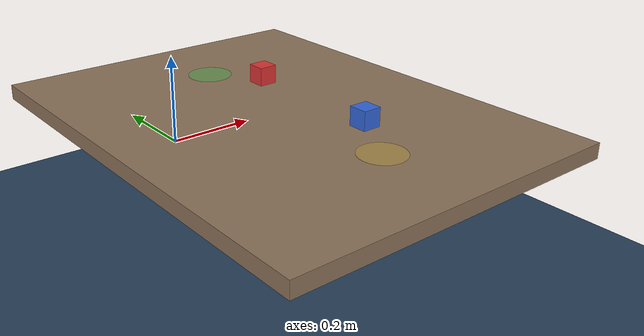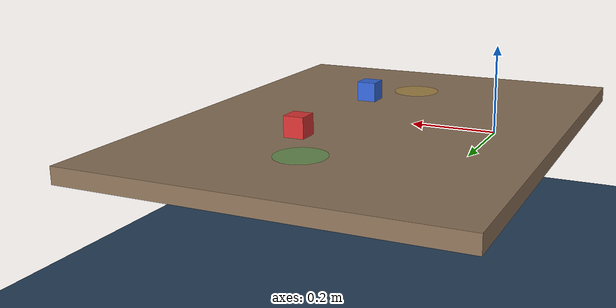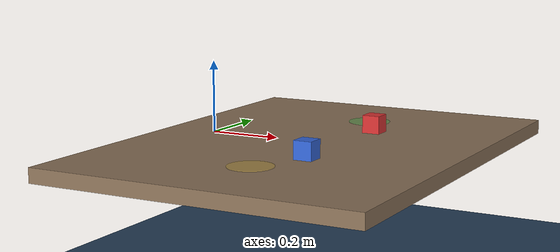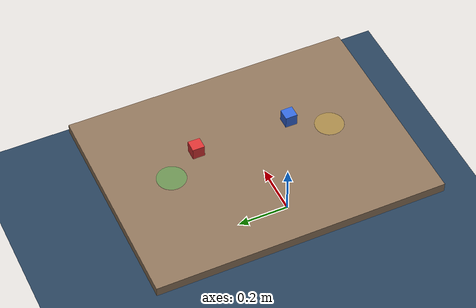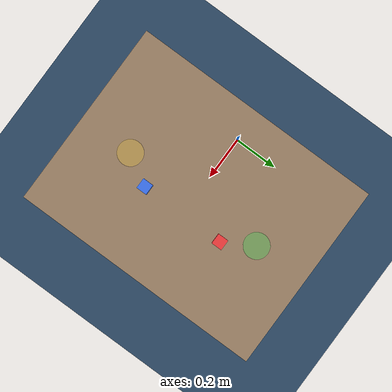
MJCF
<mujoco model="yam_bimanual_scene">
  <compiler angle="radian" meshdir="assets"/>

  <option integrator="implicitfast"/>

  <statistic center="0.3 0 0.15" extent="1.1"/>

  <visual>
    <headlight diffuse="0.6 0.6 0.6" ambient="0.35 0.35 0.35" specular="0 0 0"/>
    <rgba haze="0.15 0.25 0.35 1"/>
    <global azimuth="140" elevation="-20"/>
  </visual>

  <asset>
    <texture type="skybox" builtin="gradient" rgb1="0.3 0.5 0.7" rgb2="0 0 0" width="512" height="3072"/>
    <texture type="2d" name="groundplane" builtin="checker" mark="edge" rgb1="0.2 0.3 0.4" rgb2="0.1 0.2 0.3"
      markrgb="0.8 0.8 0.8" width="300" height="300"/>
    <material name="groundplane" texture="groundplane" texuniform="true" texrepeat="5 5" reflectance="0.2"/>
    <material name="tabletop" rgba="0.55 0.45 0.35 1"/>
    <material name="cube_l_mat" rgba="0.85 0.2 0.2 1"/>
    <material name="cube_r_mat" rgba="0.2 0.4 0.85 1"/>
    <material name="target_l_mat" rgba="0.2 0.8 0.3 0.35"/>
    <material name="target_r_mat" rgba="0.85 0.7 0.2 0.35"/>
  </asset>

  <worldbody>
    <light pos="0.3 0 1.5" dir="0 0 -1" directional="true"/>
    <geom name="floor" size="0 0 0.05" type="plane" material="groundplane" pos="0 0 -0.4" contype="1" conaffinity="1"/>

    <!-- Table: top surface at z = 0, so both arm bases sit on it. Wider in y to
         fit two arms side by side at the near edge. -->
    <geom name="table" type="box" material="tabletop" pos="0.3 0 -0.02" size="0.45 0.6 0.02"
      contype="1" conaffinity="1"/>

    <!-- Left arm's cube + place target. -->
    <body name="cube_l" pos="0.4 0.2 0.025">
      <freejoint name="cube_l_free"/>
      <inertial pos="0 0 0" mass="0.05" diaginertia="2.1e-5 2.1e-5 2.1e-5"/>
      <geom name="cube_l_geom" type="box" size="0.025 0.025 0.025" material="cube_l_mat"
        condim="4" friction="1.0 0.05 0.01" contype="1" conaffinity="1"/>
    </body>
    <body name="target_l" pos="0.32 0.34 0.001" mocap="true">
      <geom name="target_l_geom" type="cylinder" size="0.06 0.001" material="target_l_mat"
        contype="0" conaffinity="0"/>
    </body>

    <!-- Right arm's cube + place target. -->
    <body name="cube_r" pos="0.4 -0.2 0.025">
      <freejoint name="cube_r_free"/>
      <inertial pos="0 0 0" mass="0.05" diaginertia="2.1e-5 2.1e-5 2.1e-5"/>
      <geom name="cube_r_geom" type="box" size="0.025 0.025 0.025" material="cube_r_mat"
        condim="4" friction="1.0 0.05 0.01" contype="1" conaffinity="1"/>
    </body>
    <body name="target_r" pos="0.32 -0.34 0.001" mocap="true">
      <geom name="target_r_geom" type="cylinder" size="0.06 0.001" material="target_r_mat"
        contype="0" conaffinity="0"/>
    </body>

    <!-- Exterior cameras framing both arms. -->
    <camera name="front" pos="1.05 0 0.6" xyaxes="0 1 0 -0.6 0 0.8" fovy="62"/>
    <camera name="top" pos="0.35 0 0.95" xyaxes="1 0 0 0 1 0" fovy="60"/>
  </worldbody>
</mujoco>
